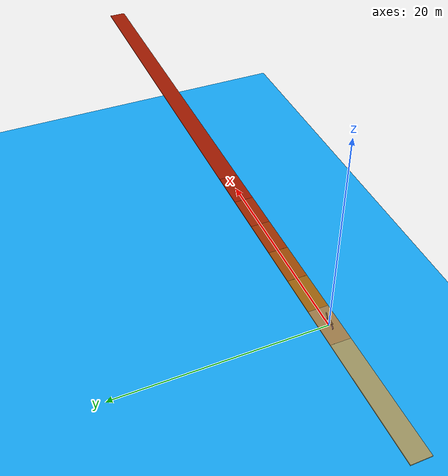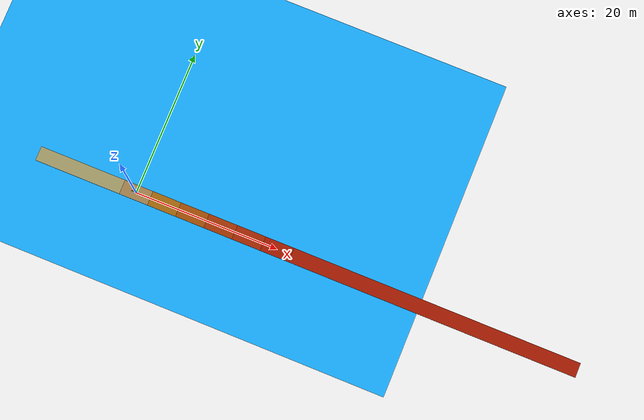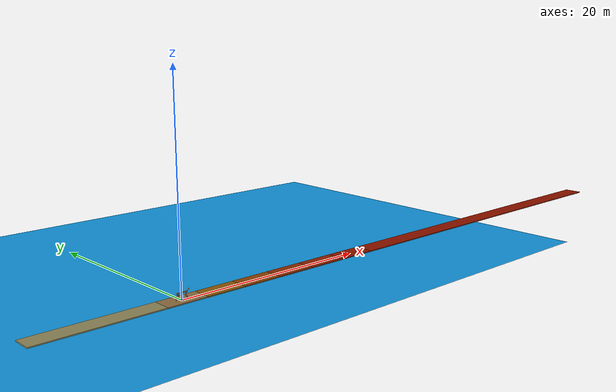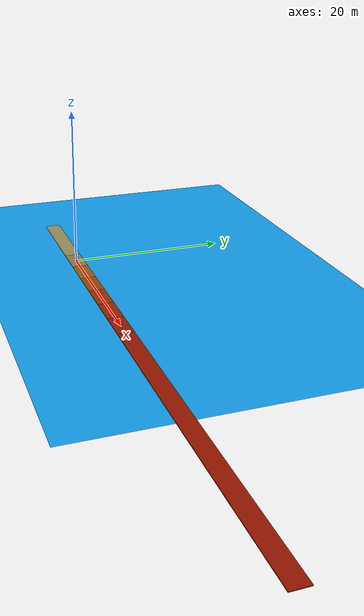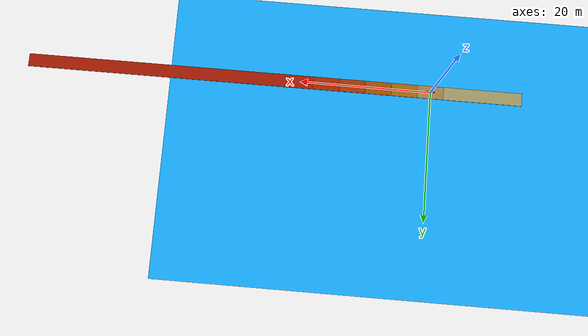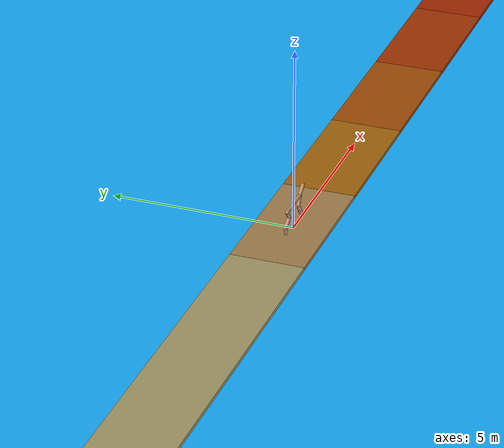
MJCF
<mujoco model='cheetah'>
  <compiler inertiafromgeom='true' coordinate='local' angle='radian' settotalmass='14' />
  <default>
    <joint limited='true' damping='.01' armature='.1' stiffness='8' solreflimit='.02 1' solimplimit='0 .8 .03' />
    <geom contype='1' conaffinity='0' condim='3' friction='.4 .1 .1' rgba='0.8 0.6 .4 1' solimp='0.0 0.8 0.01' solref='0.02 1' />
    <motor ctrlrange='-1 1' ctrllimited='true' />
  </default>
  <size nstack='300000' nuser_geom='1' />
  <option timestep='0.01' gravity='0 0 -9.81' />
  <asset>
    <texture type="skybox" builtin="gradient" width="100" height="100" rgb1="1 1 1" rgb2="0 0 0" />
    <texture name="texgeom" type="cube" builtin="flat" mark="cross" width="127" height="1278" rgb1="0.8 0.6 0.4" rgb2="0.8 0.6 0.4" markrgb="1 1 1" random="0.01" />
    <texture name="texplane" type="2d" builtin="checker" rgb1="0 0 0" rgb2="0.8 0.8 0.8" width="100" height="100" />
    <material name='MatPlane' texture="texplane" shininess="1" texrepeat="60 60" specular="1"  reflectance="0.5" />
    <material name='geom' texture="texgeom" texuniform="true" />
  </asset>
  <worldbody>
    <light directional="true" cutoff="100" exponent="1" diffuse="1 1 1" specular=".1 .1 .1" pos="0 0 1.3" dir="-0 0 -1.3" />
    <geom name='floor' rgba="0.088 0.672 0.988 1" pos='0 0 -.1' size='40 40 40' type='plane' conaffinity='0' contype="0" condim='3' />
      <body name='block_0' pos = '-8 0 0.05'>
          <joint name='blockz_0' type='slide' pos='0 0 0' axis='0 0 1' limited='true' range='-.15 0.15' stiffness="150" springref="0"/>
          <geom name='block_0' conaffinity="1" contype="1" condim="3" type='box' size='5.999 .99 0.05' mass="10"  rgba="0.639 0.6 0.4 1"/>
      </body>
      <body name='block_1' pos = '0 0 0.05'>
          <joint name='blockz_1' type='slide' pos='0 0 0' axis='0 0 1' limited='true' range='-.15 0.15' stiffness="150" springref="0"/>
          <geom name='block_1' conaffinity="1" contype="1" condim="3" type='box' size='1.999 .99 0.05' mass="10" rgba="0.639 0.5 0.3 1" />
      </body>
      <body name='block_2' pos = '4 0 0.05'>
          <joint name='blockz_2' type='slide' pos='0 0 0' axis='0 0 1' limited='true' range='-.15 0.15' stiffness="150" springref="0"/>
          <geom name='block_2' conaffinity="1" contype="1" condim="3" type='box' size='1.999 .99 0.05' mass="10"  rgba="0.639 0.4 0.05 1"/>
      </body>
      <body name='block_3' pos = '8 0 0.05'>
          <joint name='blockz_3' type='slide' pos='0 0 0' axis='0 0 1' limited='true' range='-.15 0.15' stiffness="150" springref="0"/>
          <geom name='block_3' conaffinity="1" contype="1" condim="3" type='box' size='1.999 .99 0.05' mass="10" rgba="0.639 0.3 0.025 1"/>
      </body>
      <body name='block_4' pos = '12 0 0.05'>
          <joint name='blockz_4' type='slide' pos='0 0 0' axis='0 0 1' limited='true' range='-.15 0.15' stiffness="150" springref="0"/>
          <geom name='block_4' conaffinity="1" contype="1" condim="3" type='box' size='1.999 .99 0.05' mass="10" rgba="0.639 0.2 0.01 1"/>
      </body>
      <body name='block_5' pos = '16 0 0.05'>
          <joint name='blockz_5' type='slide' pos='0 0 0' axis='0 0 1' limited='true' range='-.15 0.15' stiffness="150" springref="0"/>
          <geom name='block_5' conaffinity="1" contype="1" condim="3" type='box' size='1.999 .99 0.05' mass="10" rgba="0.639 0.15 0.005 1"/>
      </body>
      <body name='block_6' pos = '20 0 0.05'>
          <joint name='blockz_6' type='slide' pos='0 0 0' axis='0 0 1' limited='true' range='-.15 0.15' stiffness="150" springref="0"/>
          <geom name='block_6' conaffinity="1" contype="1" condim="3" type='box' size='1.999 .99 0.05' mass="10" rgba="0.639 0.1 0.0 1"/>
      </body>
      <body name='block_7' pos = '42 0 0.05'>
          <joint name='blockz_7' type='slide' pos='0 0 0' axis='0 0 1' limited='true' range='-.15 0.15' stiffness="150" springref="0"/>
          <geom name='block_7' conaffinity="1" contype="1" condim="3" type='box' size='19.999 .99 0.05' mass="10" rgba="0.639 0.1 0.0 1"/>
      </body>

    <body name='torso' pos='0 0 .7'>
      <joint name='rootx' type='slide' pos='0 0 0' axis='1 0 0' limited='false' damping='0' armature='0' stiffness='0' />
      <joint name='rootz' type='slide' pos='0 0 0' axis='0 0 1' limited='false' damping='0' armature='0' stiffness='0' />
      <joint name='rooty' type='hinge' pos='0 0 0' axis='0 1 0' limited='false' damping='0' armature='0' stiffness='0' />
      <geom name='torso' type='capsule' fromto='-.5 0 0 .5 0 0' size='0.046' />
      <geom name='head' type='capsule' pos='.6 0 .1' axisangle='0 1 0 .87' size='0.046 .15' />
      <body name='bthigh' pos='-.5 0 0'>
        <joint name='bthigh' type='hinge' pos='0 0 0' axis='0 1 0' range='-.52 1.05' stiffness='240' damping='6' />
        <geom name='bthigh' type='capsule' pos='.1 0 -.13' axisangle='0 1 0 -3.8' size='0.046 .145' />
        <body name='bshin' pos='.16 0 -.25'>
          <joint name='bshin' type='hinge' pos='0 0 0' axis='0 1 0' range='-.785 .785' stiffness='180' damping='4.5' />
          <geom name='bshin' type='capsule' pos='-.14 0 -.07' axisangle='0 1 0 -2.03' size='0.046 .15' rgba='0.9 0.6 0.6 1' />
          <body name='bfoot' pos='-.28 0 -.14'>
            <joint name='bfoot' type='hinge' pos='0 0 0' axis='0 1 0' range='-.4 .785' stiffness='120' damping='3' />
            <geom name='bfoot' type='capsule' pos='.03 0 -.097' axisangle='0 1 0 -.27' size='0.046 .094' rgba='0.9 0.6 0.6 1' />
          </body>
        </body>
      </body>
      <body name='fthigh' pos='.5 0 0'>
        <joint name='fthigh' type='hinge' pos='0 0 0' axis='0 1 0' range='-1 .7' stiffness='180' damping='4.5' />
        <geom name='fthigh' type='capsule' pos='-.07 0 -.12' axisangle='0 1 0 .52' size='0.046 .133' />
        <body name='fshin' pos='-.14 0 -.24'>
          <joint name='fshin' type='hinge' pos='0 0 0' axis='0 1 0' range='-1.2 .87' stiffness='120' damping='3' />
          <geom name='fshin' type='capsule' pos='.065 0 -.09' axisangle='0 1 0 -.6' size='0.046 .106' rgba='0.9 0.6 0.6 1' />
          <body name='ffoot' pos='.13 0 -.18'>
            <joint name='ffoot' type='hinge' pos='0 0 0' axis='0 1 0' range='-.5 .5' stiffness='60' damping='1.5' />
            <geom name='ffoot' type='capsule' pos='.045 0 -.07' axisangle='0 1 0 -.6' size='0.046 .07' rgba='0.9 0.6 0.6 1' />
          </body>
        </body>
      </body>
    </body>
  </worldbody>
  <actuator>
    <motor name='bthigh' joint='bthigh' gear='120' />
    <motor name='bshin' joint='bshin' gear='90' />
    <motor name='bfoot' joint='bfoot' gear='60' />
    <motor name='fthigh' joint='fthigh' gear='120' />
    <motor name='fshin' joint='fshin' gear='60' />
    <motor name='ffoot' joint='ffoot' gear='30' />
  </actuator>
</mujoco>
